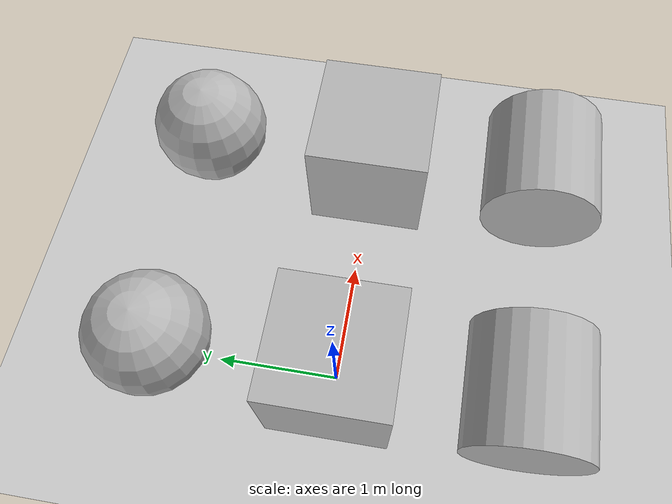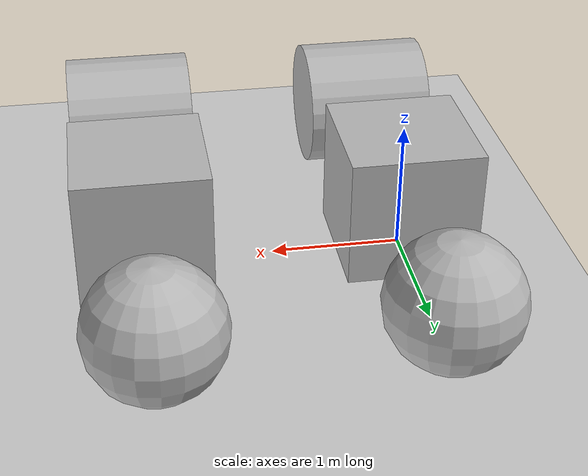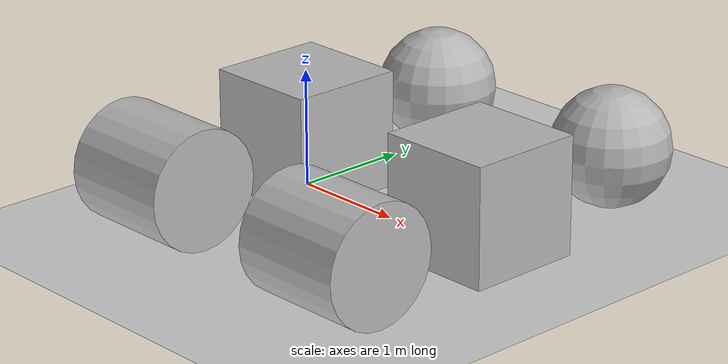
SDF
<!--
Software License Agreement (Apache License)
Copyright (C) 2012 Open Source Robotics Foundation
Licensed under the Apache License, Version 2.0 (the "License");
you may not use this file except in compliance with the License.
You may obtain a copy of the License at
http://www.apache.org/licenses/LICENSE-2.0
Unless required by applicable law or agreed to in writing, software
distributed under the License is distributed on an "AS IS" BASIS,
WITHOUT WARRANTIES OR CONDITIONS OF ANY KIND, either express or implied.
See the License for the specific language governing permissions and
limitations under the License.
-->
<?xml version="1.0" ?>
<sdf version="1.5">
  <world name="default">
    <include>
      <uri>model://ground_plane</uri>
    </include>
    <include>
      <uri>model://sun</uri>
    </include>
    <model name="box_sim">
      <pose>0 0 0.5 0 0 0</pose>
      <link name="link">
        <collision name="collision">
          <geometry>
            <box>
              <size>1 1 1</size>
            </box>
          </geometry>
        </collision>
        <visual name="visual">
          <geometry>
            <box>
              <size>1 1 1</size>
            </box>
          </geometry>
          <plugin name="blink" filename="libBlinkVisualPlugin.so">
            <color_a>1 0 0 1</color_a>
            <color_b>1 0 0 0</color_b>
            <period>10</period>
          </plugin>
        </visual>
      </link>
    </model>
    <model name="sphere_sim">
      <pose>0 1.5 0.5 0 0 0</pose>
      <link name="link">
        <collision name="collision">
          <geometry>
            <sphere>
              <radius>0.5</radius>
            </sphere>
          </geometry>
        </collision>
        <visual name="visual">
          <geometry>
            <sphere>
              <radius>0.5</radius>
            </sphere>
          </geometry>
          <plugin name="blink" filename="libBlinkVisualPlugin.so">
            <color_a>0 1 1 1</color_a>
            <color_b>0 1 0 1</color_b>
            <period>2</period>
          </plugin>
        </visual>
      </link>
    </model>
    <model name="cylinder_sim">
      <pose>0 -1.5 0.5 0 1.5707 0</pose>
      <link name="link">
        <collision name="collision">
          <geometry>
            <cylinder>
              <radius>0.5</radius>
              <length>1.0</length>
            </cylinder>
          </geometry>
        </collision>
        <visual name="visual">
          <geometry>
            <cylinder>
              <radius>0.5</radius>
              <length>1.0</length>
            </cylinder>
          </geometry>
          <plugin name="blink" filename="libBlinkVisualPlugin.so">
            <color_a>0 0 1 1</color_a>
            <color_b>1 1 1 1</color_b>
            <period>0.4</period>
          </plugin>
        </visual>
      </link>
    </model>
    <model name="box_wall">
      <pose>2 0 0.5 0 0 0</pose>
      <link name="link">
        <collision name="collision">
          <geometry>
            <box>
              <size>1 1 1</size>
            </box>
          </geometry>
        </collision>
        <visual name="visual">
          <geometry>
            <box>
              <size>1 1 1</size>
            </box>
          </geometry>
          <plugin name="blink" filename="libBlinkVisualPlugin.so">
            <color_a>1 0 0 1</color_a>
            <color_b>1 0 0 0</color_b>
            <period>10</period>
            <use_wall_time>true</use_wall_time>
          </plugin>
        </visual>
      </link>
    </model>
    <model name="sphere_wall">
      <pose>2 1.5 0.5 0 0 0</pose>
      <link name="link">
        <collision name="collision">
          <geometry>
            <sphere>
              <radius>0.5</radius>
            </sphere>
          </geometry>
        </collision>
        <visual name="visual">
          <geometry>
            <sphere>
              <radius>0.5</radius>
            </sphere>
          </geometry>
          <plugin name="blink" filename="libBlinkVisualPlugin.so">
            <color_a>0 1 1 1</color_a>
            <color_b>0 1 0 1</color_b>
            <period>2</period>
            <use_wall_time>true</use_wall_time>
          </plugin>
        </visual>
      </link>
    </model>
    <model name="cylinder_wall">
      <pose>2 -1.5 0.5 0 1.5707 0</pose>
      <link name="link">
        <collision name="collision">
          <geometry>
            <cylinder>
              <radius>0.5</radius>
              <length>1.0</length>
            </cylinder>
          </geometry>
        </collision>
        <visual name="visual">
          <geometry>
            <cylinder>
              <radius>0.5</radius>
              <length>1.0</length>
            </cylinder>
          </geometry>
          <plugin name="blink" filename="libBlinkVisualPlugin.so">
            <color_a>0 0 1 1</color_a>
            <color_b>1 1 1 1</color_b>
            <period>0.4</period>
            <use_wall_time>true</use_wall_time>
          </plugin>
        </visual>
      </link>
    </model>
  </world>
</sdf>
